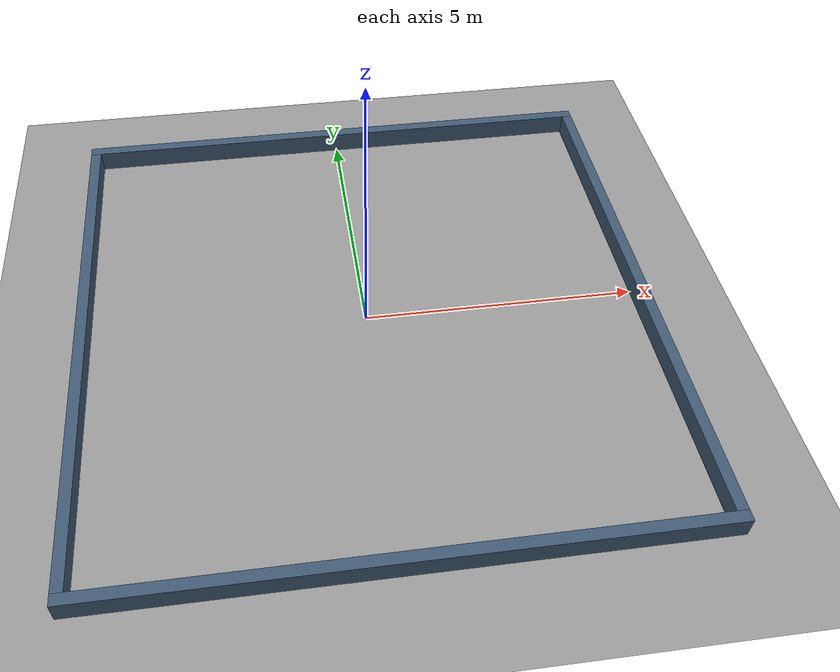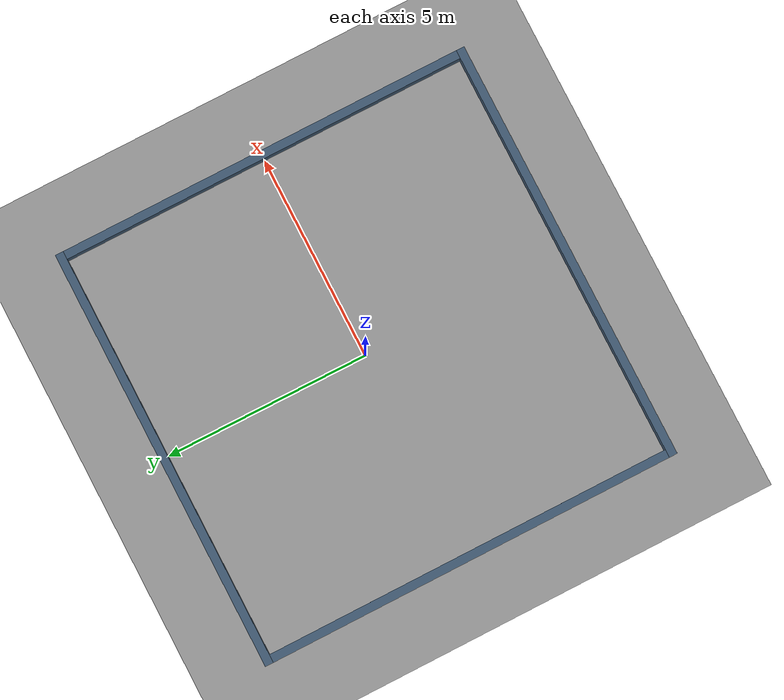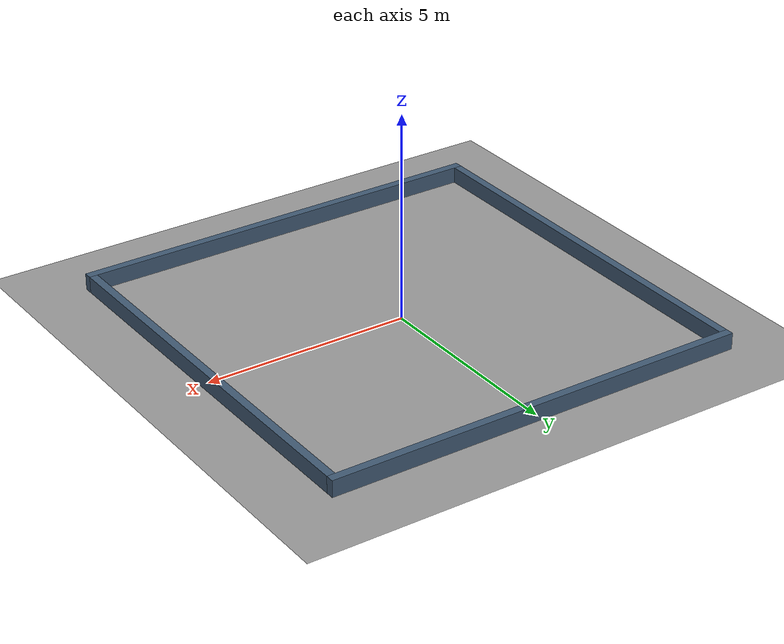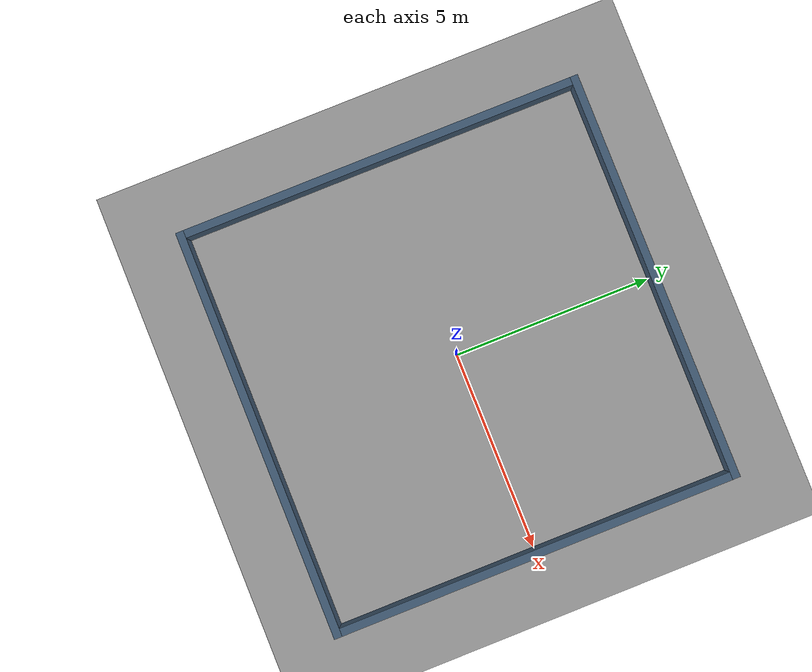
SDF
<?xml version='1.0' encoding='utf-8'?>
<sdf version="1.6">
  <world name="swarm_arena">
    <gravity>0 0 -9.81</gravity>
    <physics name="ode" type="ode">
      <max_step_size>0.001</max_step_size>
      <real_time_update_rate>1000</real_time_update_rate>
    </physics>
    <light name="sun" type="directional">
      <pose>0 0 10 0 0 0</pose>
      <diffuse>0.8 0.8 0.8 1</diffuse>
      <specular>0.2 0.2 0.2 1</specular>
      <direction>-0.5 0.1 -0.9</direction>
      <cast_shadows>true</cast_shadows>
    </light>
    <model name="ground_plane">
      <static>true</static>
      <link name="ground">
        <collision name="collision">
          <geometry>
            <plane>
              <normal>0 0 1</normal>
              <size>20 20</size>
            </plane>
          </geometry>
          <surface>
            <friction>
              <ode>
                <mu>1</mu>
                <mu2>1</mu2>
              </ode>
            </friction>
          </surface>
        </collision>
        <visual name="visual">
          <geometry>
            <plane>
              <normal>0 0 1</normal>
              <size>20 20</size>
            </plane>
          </geometry>
          <material>
            <ambient>0.6 0.6 0.6 1</ambient>
            <diffuse>0.6 0.6 0.6 1</diffuse>
          </material>
        </visual>
      </link>
    </model>
    <gui fullscreen="0">
      <camera name="user_camera">
        <pose>-7 -9 10 0 0.75 0.95</pose>
      </camera>
    </gui>
    <model name="north_wall">
      <static>true</static>
      <pose>0 5.1 0.2 0 0 0</pose>
      <link name="wall">
        <collision name="collision">
          <geometry>
            <box>
              <size>10.4 0.2 0.4</size>
            </box>
          </geometry>
        </collision>
        <visual name="visual">
          <geometry>
            <box>
              <size>10.4 0.2 0.4</size>
            </box>
          </geometry>
          <material>
            <ambient>0.25 0.35 0.45 1</ambient>
            <diffuse>0.25 0.35 0.45 1</diffuse>
          </material>
        </visual>
      </link>
    </model>
    <model name="south_wall">
      <static>true</static>
      <pose>0 -5.1 0.2 0 0 0</pose>
      <link name="wall">
        <collision name="collision">
          <geometry>
            <box>
              <size>10.4 0.2 0.4</size>
            </box>
          </geometry>
        </collision>
        <visual name="visual">
          <geometry>
            <box>
              <size>10.4 0.2 0.4</size>
            </box>
          </geometry>
          <material>
            <ambient>0.25 0.35 0.45 1</ambient>
            <diffuse>0.25 0.35 0.45 1</diffuse>
          </material>
        </visual>
      </link>
    </model>
    <model name="east_wall">
      <static>true</static>
      <pose>5.1 0 0.2 0 0 0</pose>
      <link name="wall">
        <collision name="collision">
          <geometry>
            <box>
              <size>0.2 10 0.4</size>
            </box>
          </geometry>
        </collision>
        <visual name="visual">
          <geometry>
            <box>
              <size>0.2 10 0.4</size>
            </box>
          </geometry>
          <material>
            <ambient>0.25 0.35 0.45 1</ambient>
            <diffuse>0.25 0.35 0.45 1</diffuse>
          </material>
        </visual>
      </link>
    </model>
    <model name="west_wall">
      <static>true</static>
      <pose>-5.1 0 0.2 0 0 0</pose>
      <link name="wall">
        <collision name="collision">
          <geometry>
            <box>
              <size>0.2 10 0.4</size>
            </box>
          </geometry>
        </collision>
        <visual name="visual">
          <geometry>
            <box>
              <size>0.2 10 0.4</size>
            </box>
          </geometry>
          <material>
            <ambient>0.25 0.35 0.45 1</ambient>
            <diffuse>0.25 0.35 0.45 1</diffuse>
          </material>
        </visual>
      </link>
    </model>
    <!-- Pose/velocity reset without rewinding ROS simulated time. -->
    <plugin name="environment_state" filename="libgazebo_ros_state.so">
      <ros><namespace>/swarm/simulation</namespace></ros>
      <update_rate>10</update_rate>
    </plugin>
    <plugin name="dock_physics" filename="libswarm_dock_physics.so"/>
  </world>
</sdf>
